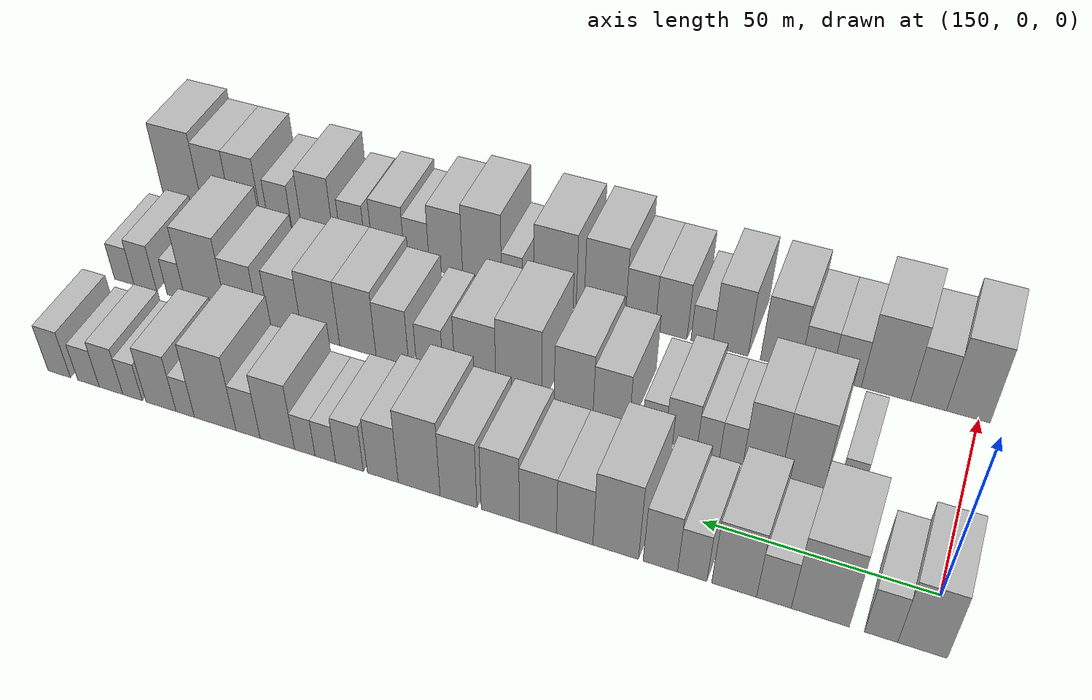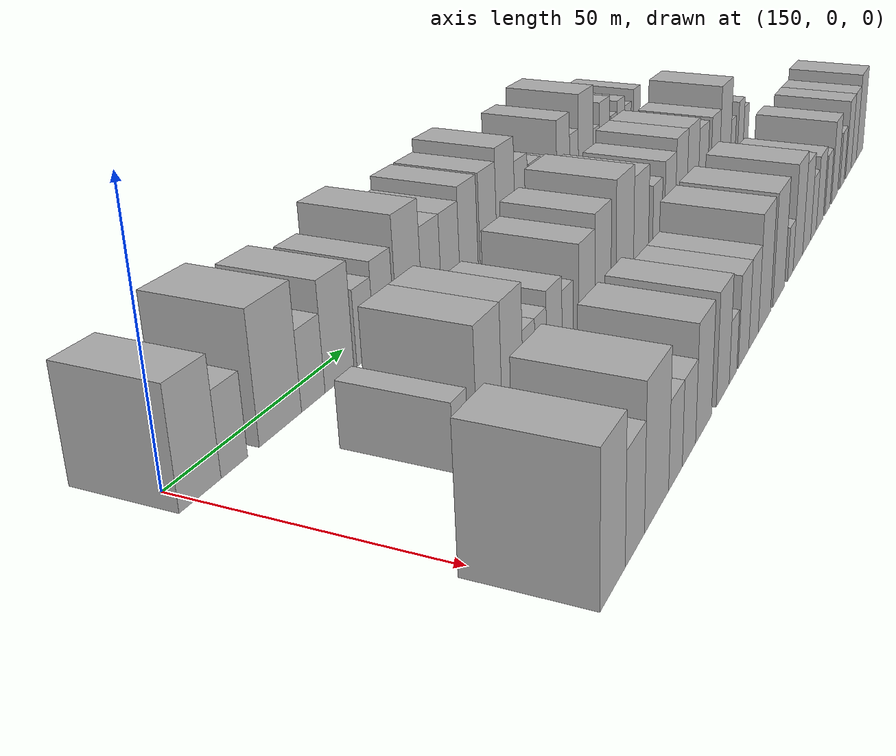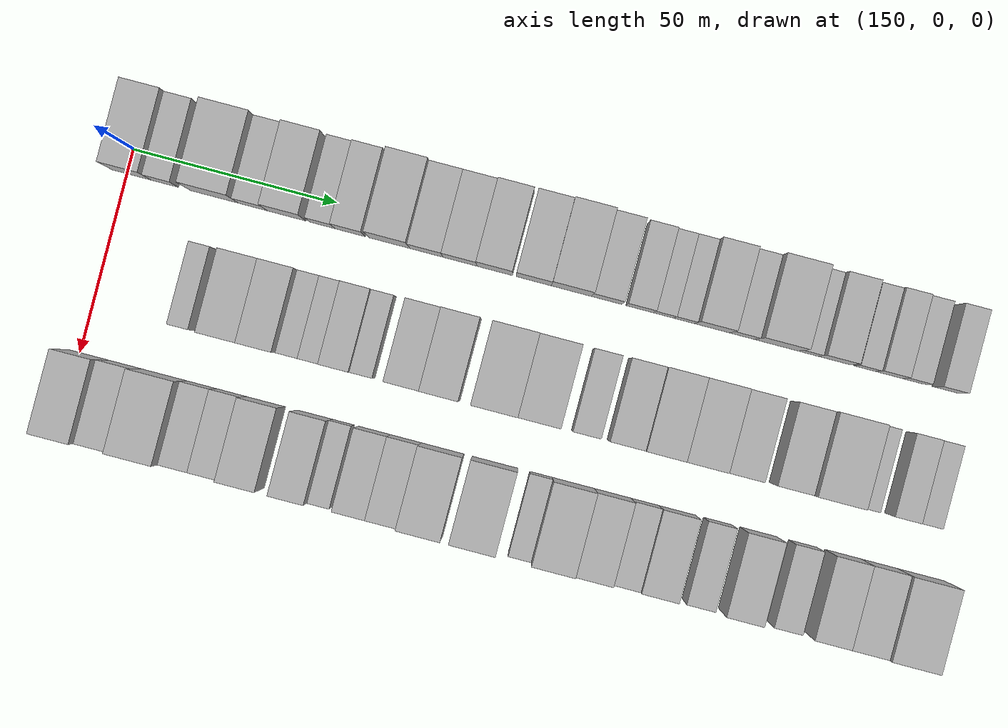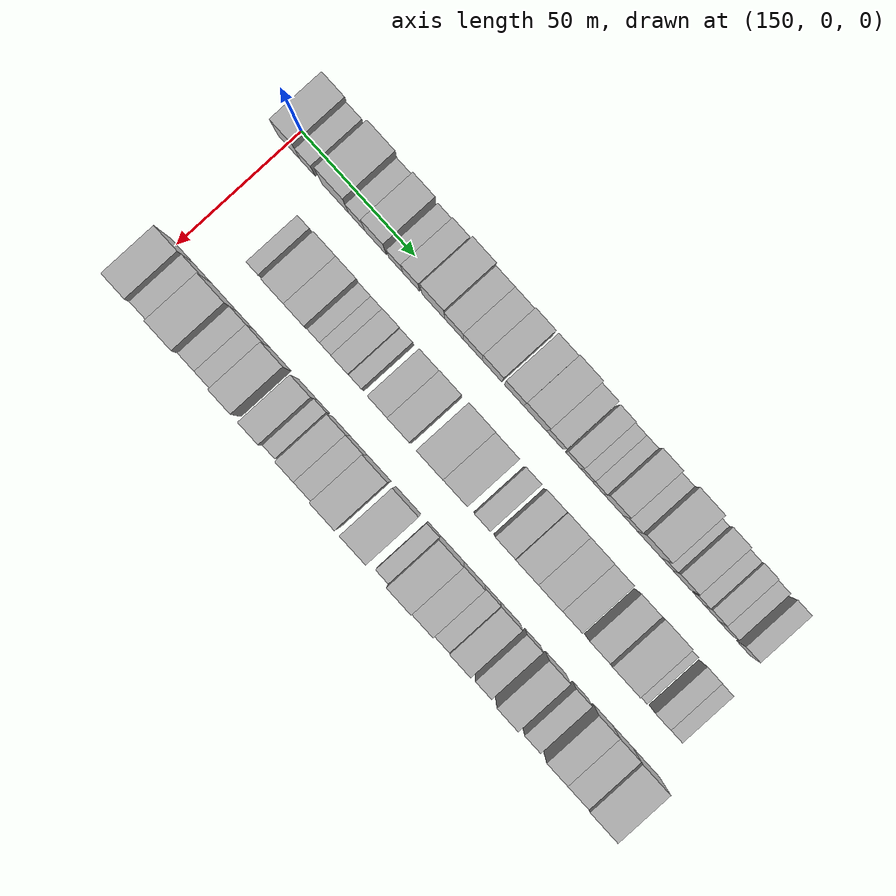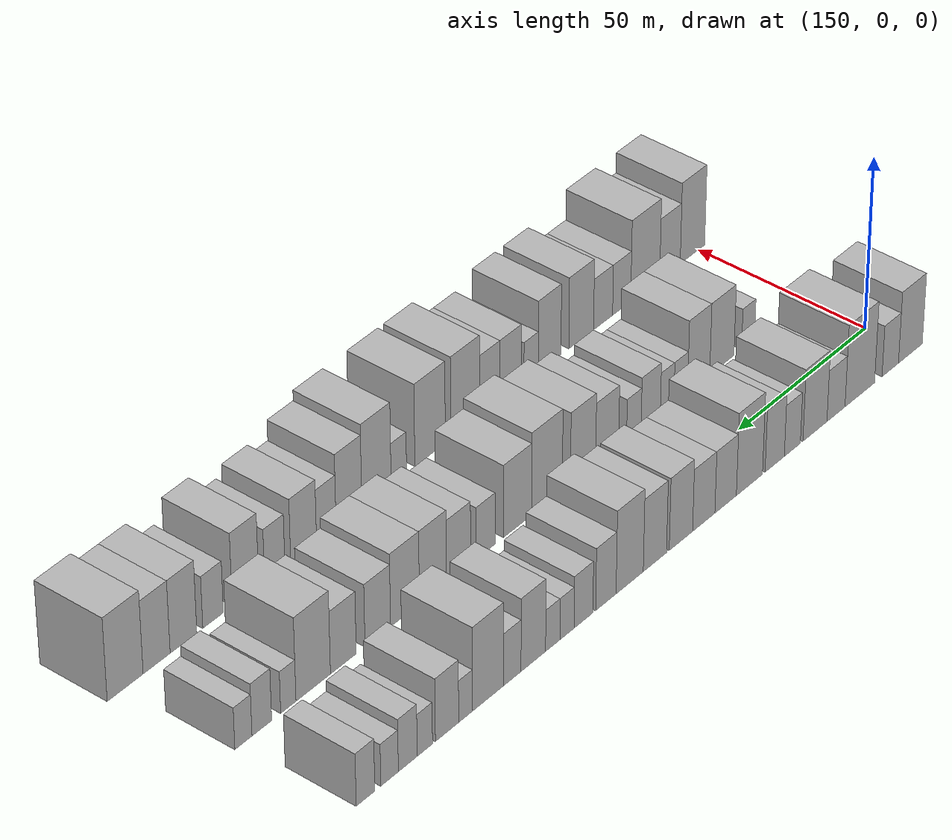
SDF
<sdf version="1.6">
 <world name="default">
  <model name="building_415">
   <static>1</static>
   <pose>146.0000 1.2237 0 0.000000 0.000000 0.000000</pose>
   <link name="link">
    <pose>0 0 10.50 0 0 0</pose>
    <collision name="collision"><geometry><box><size>20.0000 9.6899 21.0000</size></box></geometry></collision>
    <visual name="visual">
     <cast_shadows>0</cast_shadows>
     <geometry><box><size>20.0000 9.6899 21.0000</size></box></geometry>
     <material>
      <script>
       <uri>model://HANNAS_wall/materials/scripts</uri>
       <uri>model://HANNAS_wall/materials/textures</uri>
       <name>vrc/HANNAS_wall</name>
      </script>
     </material>
    </visual>
   </link>
  </model>
  <model name="building_416">
   <static>1</static>
   <pose>146.0000 9.3791 0 0.000000 0.000000 0.000000</pose>
   <link name="link">
    <pose>0 0 7.50 0 0 0</pose>
    <collision name="collision"><geometry><box><size>20.0000 6.6209 15.0000</size></box></geometry></collision>
    <visual name="visual">
     <cast_shadows>0</cast_shadows>
     <geometry><box><size>20.0000 6.6209 15.0000</size></box></geometry>
     <material>
      <script>
       <uri>model://HANNAS_wall/materials/scripts</uri>
       <uri>model://HANNAS_wall/materials/textures</uri>
       <name>vrc/HANNAS_wall</name>
      </script>
     </material>
    </visual>
   </link>
  </model>
  <model name="building_417">
   <static>1</static>
   <pose>146.0000 21.5888 0 0.000000 0.000000 0.000000</pose>
   <link name="link">
    <pose>0 0 12.00 0 0 0</pose>
    <collision name="collision"><geometry><box><size>20.0000 11.7985 24.0000</size></box></geometry></collision>
    <visual name="visual">
     <cast_shadows>0</cast_shadows>
     <geometry><box><size>20.0000 11.7985 24.0000</size></box></geometry>
     <material>
      <script>
       <uri>model://HANNAS_wall/materials/scripts</uri>
       <uri>model://HANNAS_wall/materials/textures</uri>
       <name>vrc/HANNAS_wall</name>
      </script>
     </material>
    </visual>
   </link>
  </model>
  <model name="building_418">
   <static>1</static>
   <pose>146.0000 31.0629 0 0.000000 0.000000 0.000000</pose>
   <link name="link">
    <pose>0 0 7.50 0 0 0</pose>
    <collision name="collision"><geometry><box><size>20.0000 7.1497 15.0000</size></box></geometry></collision>
    <visual name="visual">
     <cast_shadows>0</cast_shadows>
     <geometry><box><size>20.0000 7.1497 15.0000</size></box></geometry>
     <material>
      <script>
       <uri>model://HANNAS_wall/materials/scripts</uri>
       <uri>model://HANNAS_wall/materials/textures</uri>
       <name>vrc/HANNAS_wall</name>
      </script>
     </material>
    </visual>
   </link>
  </model>
  <model name="building_419">
   <static>1</static>
   <pose>146.0000 39.3427 0 0.000000 0.000000 0.000000</pose>
   <link name="link">
    <pose>0 0 10.50 0 0 0</pose>
    <collision name="collision"><geometry><box><size>20.0000 9.4098 21.0000</size></box></geometry></collision>
    <visual name="visual">
     <cast_shadows>0</cast_shadows>
     <geometry><box><size>20.0000 9.4098 21.0000</size></box></geometry>
     <material>
      <script>
       <uri>model://HANNAS_wall/materials/scripts</uri>
       <uri>model://HANNAS_wall/materials/textures</uri>
       <name>vrc/HANNAS_wall</name>
      </script>
     </material>
    </visual>
   </link>
  </model>
  <model name="building_420">
   <static>1</static>
   <pose>146.0000 48.1651 0 0.000000 0.000000 0.000000</pose>
   <link name="link">
    <pose>0 0 7.50 0 0 0</pose>
    <collision name="collision"><geometry><box><size>20.0000 6.2350 15.0000</size></box></geometry></collision>
    <visual name="visual">
     <cast_shadows>0</cast_shadows>
     <geometry><box><size>20.0000 6.2350 15.0000</size></box></geometry>
     <material>
      <script>
       <uri>model://HANNAS_wall/materials/scripts</uri>
       <uri>model://HANNAS_wall/materials/textures</uri>
       <name>vrc/HANNAS_wall</name>
      </script>
     </material>
    </visual>
   </link>
  </model>
  <model name="building_421">
   <static>1</static>
   <pose>146.0000 54.9974 0 0.000000 0.000000 0.000000</pose>
   <link name="link">
    <pose>0 0 9.00 0 0 0</pose>
    <collision name="collision"><geometry><box><size>20.0000 7.4296 18.0000</size></box></geometry></collision>
    <visual name="visual">
     <cast_shadows>0</cast_shadows>
     <geometry><box><size>20.0000 7.4296 18.0000</size></box></geometry>
     <material>
      <script>
       <uri>model://HANNAS_wall/materials/scripts</uri>
       <uri>model://HANNAS_wall/materials/textures</uri>
       <name>vrc/HANNAS_wall</name>
      </script>
     </material>
    </visual>
   </link>
  </model>
  <model name="building_422">
   <static>1</static>
   <pose>146.0000 64.7015 0 0.000000 0.000000 0.000000</pose>
   <link name="link">
    <pose>0 0 12.00 0 0 0</pose>
    <collision name="collision"><geometry><box><size>20.0000 9.9786 24.0000</size></box></geometry></collision>
    <visual name="visual">
     <cast_shadows>0</cast_shadows>
     <geometry><box><size>20.0000 9.9786 24.0000</size></box></geometry>
     <material>
      <script>
       <uri>model://HANNAS_wall/materials/scripts</uri>
       <uri>model://HANNAS_wall/materials/textures</uri>
       <name>vrc/HANNAS_wall</name>
      </script>
     </material>
    </visual>
   </link>
  </model>
  <model name="building_423">
   <static>1</static>
   <pose>146.0000 73.7558 0 0.000000 0.000000 0.000000</pose>
   <link name="link">
    <pose>0 0 9.00 0 0 0</pose>
    <collision name="collision"><geometry><box><size>20.0000 8.1301 18.0000</size></box></geometry></collision>
    <visual name="visual">
     <cast_shadows>0</cast_shadows>
     <geometry><box><size>20.0000 8.1301 18.0000</size></box></geometry>
     <material>
      <script>
       <uri>model://HANNAS_wall/materials/scripts</uri>
       <uri>model://HANNAS_wall/materials/textures</uri>
       <name>vrc/HANNAS_wall</name>
      </script>
     </material>
    </visual>
   </link>
  </model>
  <model name="building_424">
   <static>1</static>
   <pose>146.0000 82.0110 0 0.000000 0.000000 0.000000</pose>
   <link name="link">
    <pose>0 0 9.00 0 0 0</pose>
    <collision name="collision"><geometry><box><size>20.0000 8.3802 18.0000</size></box></geometry></collision>
    <visual name="visual">
     <cast_shadows>0</cast_shadows>
     <geometry><box><size>20.0000 8.3802 18.0000</size></box></geometry>
     <material>
      <script>
       <uri>model://HANNAS_wall/materials/scripts</uri>
       <uri>model://HANNAS_wall/materials/textures</uri>
       <name>vrc/HANNAS_wall</name>
      </script>
     </material>
    </visual>
   </link>
  </model>
  <model name="building_425">
   <static>1</static>
   <pose>146.0000 90.5546 0 0.000000 0.000000 0.000000</pose>
   <link name="link">
    <pose>0 0 10.50 0 0 0</pose>
    <collision name="collision"><geometry><box><size>20.0000 8.7070 21.0000</size></box></geometry></collision>
    <visual name="visual">
     <cast_shadows>0</cast_shadows>
     <geometry><box><size>20.0000 8.7070 21.0000</size></box></geometry>
     <material>
      <script>
       <uri>model://HANNAS_wall/materials/scripts</uri>
       <uri>model://HANNAS_wall/materials/textures</uri>
       <name>vrc/HANNAS_wall</name>
      </script>
     </material>
    </visual>
   </link>
  </model>
  <model name="building_426">
   <static>1</static>
   <pose>146.0000 100.1917 0 0.000000 0.000000 0.000000</pose>
   <link name="link">
    <pose>0 0 10.50 0 0 0</pose>
    <collision name="collision"><geometry><box><size>20.0000 8.5671 21.0000</size></box></geometry></collision>
    <visual name="visual">
     <cast_shadows>0</cast_shadows>
     <geometry><box><size>20.0000 8.5671 21.0000</size></box></geometry>
     <material>
      <script>
       <uri>model://HANNAS_wall/materials/scripts</uri>
       <uri>model://HANNAS_wall/materials/textures</uri>
       <name>vrc/HANNAS_wall</name>
      </script>
     </material>
    </visual>
   </link>
  </model>
  <model name="building_427">
   <static>1</static>
   <pose>146.0000 109.4375 0 0.000000 0.000000 0.000000</pose>
   <link name="link">
    <pose>0 0 12.00 0 0 0</pose>
    <collision name="collision"><geometry><box><size>20.0000 9.9245 24.0000</size></box></geometry></collision>
    <visual name="visual">
     <cast_shadows>0</cast_shadows>
     <geometry><box><size>20.0000 9.9245 24.0000</size></box></geometry>
     <material>
      <script>
       <uri>model://HANNAS_wall/materials/scripts</uri>
       <uri>model://HANNAS_wall/materials/textures</uri>
       <name>vrc/HANNAS_wall</name>
      </script>
     </material>
    </visual>
   </link>
  </model>
  <model name="building_428">
   <static>1</static>
   <pose>146.0000 118.0964 0 0.000000 0.000000 0.000000</pose>
   <link name="link">
    <pose>0 0 9.00 0 0 0</pose>
    <collision name="collision"><geometry><box><size>20.0000 7.3932 18.0000</size></box></geometry></collision>
    <visual name="visual">
     <cast_shadows>0</cast_shadows>
     <geometry><box><size>20.0000 7.3932 18.0000</size></box></geometry>
     <material>
      <script>
       <uri>model://HANNAS_wall/materials/scripts</uri>
       <uri>model://HANNAS_wall/materials/textures</uri>
       <name>vrc/HANNAS_wall</name>
      </script>
     </material>
    </visual>
   </link>
  </model>
  <model name="building_429">
   <static>1</static>
   <pose>146.0000 126.1690 0 0.000000 0.000000 0.000000</pose>
   <link name="link">
    <pose>0 0 7.50 0 0 0</pose>
    <collision name="collision"><geometry><box><size>20.0000 6.7520 15.0000</size></box></geometry></collision>
    <visual name="visual">
     <cast_shadows>0</cast_shadows>
     <geometry><box><size>20.0000 6.7520 15.0000</size></box></geometry>
     <material>
      <script>
       <uri>model://HANNAS_wall/materials/scripts</uri>
       <uri>model://HANNAS_wall/materials/textures</uri>
       <name>vrc/HANNAS_wall</name>
      </script>
     </material>
    </visual>
   </link>
  </model>
  <model name="building_430">
   <static>1</static>
   <pose>146.0000 132.0741 0 0.000000 0.000000 0.000000</pose>
   <link name="link">
    <pose>0 0 6.00 0 0 0</pose>
    <collision name="collision"><geometry><box><size>20.0000 5.0582 12.0000</size></box></geometry></collision>
    <visual name="visual">
     <cast_shadows>0</cast_shadows>
     <geometry><box><size>20.0000 5.0582 12.0000</size></box></geometry>
     <material>
      <script>
       <uri>model://HANNAS_wall/materials/scripts</uri>
       <uri>model://HANNAS_wall/materials/textures</uri>
       <name>vrc/HANNAS_wall</name>
      </script>
     </material>
    </visual>
   </link>
  </model>
  <model name="building_431">
   <static>1</static>
   <pose>146.0000 137.1391 0 0.000000 0.000000 0.000000</pose>
   <link name="link">
    <pose>0 0 6.00 0 0 0</pose>
    <collision name="collision"><geometry><box><size>20.0000 5.0719 12.0000</size></box></geometry></collision>
    <visual name="visual">
     <cast_shadows>0</cast_shadows>
     <geometry><box><size>20.0000 5.0719 12.0000</size></box></geometry>
     <material>
      <script>
       <uri>model://HANNAS_wall/materials/scripts</uri>
       <uri>model://HANNAS_wall/materials/textures</uri>
       <name>vrc/HANNAS_wall</name>
      </script>
     </material>
    </visual>
   </link>
  </model>
  <model name="building_432">
   <static>1</static>
   <pose>146.0000 144.0034 0 0.000000 0.000000 0.000000</pose>
   <link name="link">
    <pose>0 0 10.50 0 0 0</pose>
    <collision name="collision"><geometry><box><size>20.0000 8.6568 21.0000</size></box></geometry></collision>
    <visual name="visual">
     <cast_shadows>0</cast_shadows>
     <geometry><box><size>20.0000 8.6568 21.0000</size></box></geometry>
     <material>
      <script>
       <uri>model://HANNAS_wall/materials/scripts</uri>
       <uri>model://HANNAS_wall/materials/textures</uri>
       <name>vrc/HANNAS_wall</name>
      </script>
     </material>
    </visual>
   </link>
  </model>
  <model name="building_433">
   <static>1</static>
   <pose>146.0000 151.3894 0 0.000000 0.000000 0.000000</pose>
   <link name="link">
    <pose>0 0 7.50 0 0 0</pose>
    <collision name="collision"><geometry><box><size>20.0000 6.1151 15.0000</size></box></geometry></collision>
    <visual name="visual">
     <cast_shadows>0</cast_shadows>
     <geometry><box><size>20.0000 6.1151 15.0000</size></box></geometry>
     <material>
      <script>
       <uri>model://HANNAS_wall/materials/scripts</uri>
       <uri>model://HANNAS_wall/materials/textures</uri>
       <name>vrc/HANNAS_wall</name>
      </script>
     </material>
    </visual>
   </link>
  </model>
  <model name="building_434">
   <static>1</static>
   <pose>146.0000 159.7968 0 0.000000 0.000000 0.000000</pose>
   <link name="link">
    <pose>0 0 12.00 0 0 0</pose>
    <collision name="collision"><geometry><box><size>20.0000 10.6998 24.0000</size></box></geometry></collision>
    <visual name="visual">
     <cast_shadows>0</cast_shadows>
     <geometry><box><size>20.0000 10.6998 24.0000</size></box></geometry>
     <material>
      <script>
       <uri>model://HANNAS_wall/materials/scripts</uri>
       <uri>model://HANNAS_wall/materials/textures</uri>
       <name>vrc/HANNAS_wall</name>
      </script>
     </material>
    </visual>
   </link>
  </model>
  <model name="building_435">
   <static>1</static>
   <pose>146.0000 167.5469 0 0.000000 0.000000 0.000000</pose>
   <link name="link">
    <pose>0 0 6.00 0 0 0</pose>
    <collision name="collision"><geometry><box><size>20.0000 4.8004 12.0000</size></box></geometry></collision>
    <visual name="visual">
     <cast_shadows>0</cast_shadows>
     <geometry><box><size>20.0000 4.8004 12.0000</size></box></geometry>
     <material>
      <script>
       <uri>model://HANNAS_wall/materials/scripts</uri>
       <uri>model://HANNAS_wall/materials/textures</uri>
       <name>vrc/HANNAS_wall</name>
      </script>
     </material>
    </visual>
   </link>
  </model>
  <model name="building_436">
   <static>1</static>
   <pose>146.0000 173.9130 0 0.000000 0.000000 0.000000</pose>
   <link name="link">
    <pose>0 0 9.00 0 0 0</pose>
    <collision name="collision"><geometry><box><size>20.0000 7.9318 18.0000</size></box></geometry></collision>
    <visual name="visual">
     <cast_shadows>0</cast_shadows>
     <geometry><box><size>20.0000 7.9318 18.0000</size></box></geometry>
     <material>
      <script>
       <uri>model://HANNAS_wall/materials/scripts</uri>
       <uri>model://HANNAS_wall/materials/textures</uri>
       <name>vrc/HANNAS_wall</name>
      </script>
     </material>
    </visual>
   </link>
  </model>
  <model name="building_437">
   <static>1</static>
   <pose>146.0000 181.4657 0 0.000000 0.000000 0.000000</pose>
   <link name="link">
    <pose>0 0 6.00 0 0 0</pose>
    <collision name="collision"><geometry><box><size>20.0000 5.1737 12.0000</size></box></geometry></collision>
    <visual name="visual">
     <cast_shadows>0</cast_shadows>
     <geometry><box><size>20.0000 5.1737 12.0000</size></box></geometry>
     <material>
      <script>
       <uri>model://HANNAS_wall/materials/scripts</uri>
       <uri>model://HANNAS_wall/materials/textures</uri>
       <name>vrc/HANNAS_wall</name>
      </script>
     </material>
    </visual>
   </link>
  </model>
  <model name="building_438">
   <static>1</static>
   <pose>146.0000 187.2213 0 0.000000 0.000000 0.000000</pose>
   <link name="link">
    <pose>0 0 7.50 0 0 0</pose>
    <collision name="collision"><geometry><box><size>20.0000 6.3376 15.0000</size></box></geometry></collision>
    <visual name="visual">
     <cast_shadows>0</cast_shadows>
     <geometry><box><size>20.0000 6.3376 15.0000</size></box></geometry>
     <material>
      <script>
       <uri>model://HANNAS_wall/materials/scripts</uri>
       <uri>model://HANNAS_wall/materials/textures</uri>
       <name>vrc/HANNAS_wall</name>
      </script>
     </material>
    </visual>
   </link>
  </model>
  <model name="building_439">
   <static>1</static>
   <pose>146.0000 193.3290 0 0.000000 0.000000 0.000000</pose>
   <link name="link">
    <pose>0 0 6.00 0 0 0</pose>
    <collision name="collision"><geometry><box><size>20.0000 5.8777 12.0000</size></box></geometry></collision>
    <visual name="visual">
     <cast_shadows>0</cast_shadows>
     <geometry><box><size>20.0000 5.8777 12.0000</size></box></geometry>
     <material>
      <script>
       <uri>model://HANNAS_wall/materials/scripts</uri>
       <uri>model://HANNAS_wall/materials/textures</uri>
       <name>vrc/HANNAS_wall</name>
      </script>
     </material>
    </visual>
   </link>
  </model>
  <model name="building_440">
   <static>1</static>
   <pose>146.0000 201.3428 0 0.000000 0.000000 0.000000</pose>
   <link name="link">
    <pose>0 0 7.50 0 0 0</pose>
    <collision name="collision"><geometry><box><size>20.0000 6.1499 15.0000</size></box></geometry></collision>
    <visual name="visual">
     <cast_shadows>0</cast_shadows>
     <geometry><box><size>20.0000 6.1499 15.0000</size></box></geometry>
     <material>
      <script>
       <uri>model://HANNAS_wall/materials/scripts</uri>
       <uri>model://HANNAS_wall/materials/textures</uri>
       <name>vrc/HANNAS_wall</name>
      </script>
     </material>
    </visual>
   </link>
  </model>
  <model name="building_535">
   <static>1</static>
   <pose>178.0000 22.5498 0 0.000000 0.000000 0.000000</pose>
   <link name="link">
    <pose>0 0 6.00 0 0 0</pose>
    <collision name="collision"><geometry><box><size>20.0000 5.1262 12.0000</size></box></geometry></collision>
    <visual name="visual">
     <cast_shadows>0</cast_shadows>
     <geometry><box><size>20.0000 5.1262 12.0000</size></box></geometry>
     <material>
      <script>
       <uri>model://HANNAS_wall/materials/scripts</uri>
       <uri>model://HANNAS_wall/materials/textures</uri>
       <name>vrc/HANNAS_wall</name>
      </script>
     </material>
    </visual>
   </link>
  </model>
  <model name="building_536">
   <static>1</static>
   <pose>178.0000 32.8530 0 0.000000 0.000000 0.000000</pose>
   <link name="link">
    <pose>0 0 10.50 0 0 0</pose>
    <collision name="collision"><geometry><box><size>20.0000 9.4803 21.0000</size></box></geometry></collision>
    <visual name="visual">
     <cast_shadows>0</cast_shadows>
     <geometry><box><size>20.0000 9.4803 21.0000</size></box></geometry>
     <material>
      <script>
       <uri>model://HANNAS_wall/materials/scripts</uri>
       <uri>model://HANNAS_wall/materials/textures</uri>
       <name>vrc/HANNAS_wall</name>
      </script>
     </material>
    </visual>
   </link>
  </model>
  <model name="building_537">
   <static>1</static>
   <pose>178.0000 41.8807 0 0.000000 0.000000 0.000000</pose>
   <link name="link">
    <pose>0 0 10.50 0 0 0</pose>
    <collision name="collision"><geometry><box><size>20.0000 8.5750 21.0000</size></box></geometry></collision>
    <visual name="visual">
     <cast_shadows>0</cast_shadows>
     <geometry><box><size>20.0000 8.5750 21.0000</size></box></geometry>
     <material>
      <script>
       <uri>model://HANNAS_wall/materials/scripts</uri>
       <uri>model://HANNAS_wall/materials/textures</uri>
       <name>vrc/HANNAS_wall</name>
      </script>
     </material>
    </visual>
   </link>
  </model>
  <model name="building_538">
   <static>1</static>
   <pose>178.0000 48.8132 0 0.000000 0.000000 0.000000</pose>
   <link name="link">
    <pose>0 0 6.00 0 0 0</pose>
    <collision name="collision"><geometry><box><size>20.0000 5.2901 12.0000</size></box></geometry></collision>
    <visual name="visual">
     <cast_shadows>0</cast_shadows>
     <geometry><box><size>20.0000 5.2901 12.0000</size></box></geometry>
     <material>
      <script>
       <uri>model://HANNAS_wall/materials/scripts</uri>
       <uri>model://HANNAS_wall/materials/textures</uri>
       <name>vrc/HANNAS_wall</name>
      </script>
     </material>
    </visual>
   </link>
  </model>
  <model name="building_539">
   <static>1</static>
   <pose>178.0000 54.0547 0 0.000000 0.000000 0.000000</pose>
   <link name="link">
    <pose>0 0 6.00 0 0 0</pose>
    <collision name="collision"><geometry><box><size>20.0000 5.1930 12.0000</size></box></geometry></collision>
    <visual name="visual">
     <cast_shadows>0</cast_shadows>
     <geometry><box><size>20.0000 5.1930 12.0000</size></box></geometry>
     <material>
      <script>
       <uri>model://HANNAS_wall/materials/scripts</uri>
       <uri>model://HANNAS_wall/materials/textures</uri>
       <name>vrc/HANNAS_wall</name>
      </script>
     </material>
    </visual>
   </link>
  </model>
  <model name="building_540">
   <static>1</static>
   <pose>178.0000 60.3125 0 0.000000 0.000000 0.000000</pose>
   <link name="link">
    <pose>0 0 7.50 0 0 0</pose>
    <collision name="collision"><geometry><box><size>20.0000 7.3225 15.0000</size></box></geometry></collision>
    <visual name="visual">
     <cast_shadows>0</cast_shadows>
     <geometry><box><size>20.0000 7.3225 15.0000</size></box></geometry>
     <material>
      <script>
       <uri>model://HANNAS_wall/materials/scripts</uri>
       <uri>model://HANNAS_wall/materials/textures</uri>
       <name>vrc/HANNAS_wall</name>
      </script>
     </material>
    </visual>
   </link>
  </model>
  <model name="building_541">
   <static>1</static>
   <pose>178.0000 66.7202 0 0.000000 0.000000 0.000000</pose>
   <link name="link">
    <pose>0 0 6.00 0 0 0</pose>
    <collision name="collision"><geometry><box><size>20.0000 5.4929 12.0000</size></box></geometry></collision>
    <visual name="visual">
     <cast_shadows>0</cast_shadows>
     <geometry><box><size>20.0000 5.4929 12.0000</size></box></geometry>
     <material>
      <script>
       <uri>model://HANNAS_wall/materials/scripts</uri>
       <uri>model://HANNAS_wall/materials/textures</uri>
       <name>vrc/HANNAS_wall</name>
      </script>
     </material>
    </visual>
   </link>
  </model>
  <model name="building_542">
   <static>1</static>
   <pose>178.0000 76.7749 0 0.000000 0.000000 0.000000</pose>
   <link name="link">
    <pose>0 0 9.00 0 0 0</pose>
    <collision name="collision"><geometry><box><size>20.0000 8.6165 18.0000</size></box></geometry></collision>
    <visual name="visual">
     <cast_shadows>0</cast_shadows>
     <geometry><box><size>20.0000 8.6165 18.0000</size></box></geometry>
     <material>
      <script>
       <uri>model://HANNAS_wall/materials/scripts</uri>
       <uri>model://HANNAS_wall/materials/textures</uri>
       <name>vrc/HANNAS_wall</name>
      </script>
     </material>
    </visual>
   </link>
  </model>
  <model name="building_543">
   <static>1</static>
   <pose>178.0000 85.7597 0 0.000000 0.000000 0.000000</pose>
   <link name="link">
    <pose>0 0 10.50 0 0 0</pose>
    <collision name="collision"><geometry><box><size>20.0000 9.3530 21.0000</size></box></geometry></collision>
    <visual name="visual">
     <cast_shadows>0</cast_shadows>
     <geometry><box><size>20.0000 9.3530 21.0000</size></box></geometry>
     <material>
      <script>
       <uri>model://HANNAS_wall/materials/scripts</uri>
       <uri>model://HANNAS_wall/materials/textures</uri>
       <name>vrc/HANNAS_wall</name>
      </script>
     </material>
    </visual>
   </link>
  </model>
  <model name="building_544">
   <static>1</static>
   <pose>178.0000 99.0305 0 0.000000 0.000000 0.000000</pose>
   <link name="link">
    <pose>0 0 12.00 0 0 0</pose>
    <collision name="collision"><geometry><box><size>20.0000 11.1885 24.0000</size></box></geometry></collision>
    <visual name="visual">
     <cast_shadows>0</cast_shadows>
     <geometry><box><size>20.0000 11.1885 24.0000</size></box></geometry>
     <material>
      <script>
       <uri>model://HANNAS_wall/materials/scripts</uri>
       <uri>model://HANNAS_wall/materials/textures</uri>
       <name>vrc/HANNAS_wall</name>
      </script>
     </material>
    </visual>
   </link>
  </model>
  <model name="building_545">
   <static>1</static>
   <pose>178.0000 109.7427 0 0.000000 0.000000 0.000000</pose>
   <link name="link">
    <pose>0 0 10.50 0 0 0</pose>
    <collision name="collision"><geometry><box><size>20.0000 10.2359 21.0000</size></box></geometry></collision>
    <visual name="visual">
     <cast_shadows>0</cast_shadows>
     <geometry><box><size>20.0000 10.2359 21.0000</size></box></geometry>
     <material>
      <script>
       <uri>model://HANNAS_wall/materials/scripts</uri>
       <uri>model://HANNAS_wall/materials/textures</uri>
       <name>vrc/HANNAS_wall</name>
      </script>
     </material>
    </visual>
   </link>
  </model>
  <model name="building_546">
   <static>1</static>
   <pose>178.0000 121.2513 0 0.000000 0.000000 0.000000</pose>
   <link name="link">
    <pose>0 0 7.50 0 0 0</pose>
    <collision name="collision"><geometry><box><size>20.0000 6.7814 15.0000</size></box></geometry></collision>
    <visual name="visual">
     <cast_shadows>0</cast_shadows>
     <geometry><box><size>20.0000 6.7814 15.0000</size></box></geometry>
     <material>
      <script>
       <uri>model://HANNAS_wall/materials/scripts</uri>
       <uri>model://HANNAS_wall/materials/textures</uri>
       <name>vrc/HANNAS_wall</name>
      </script>
     </material>
    </visual>
   </link>
  </model>
  <model name="building_547">
   <static>1</static>
   <pose>178.0000 130.8979 0 0.000000 0.000000 0.000000</pose>
   <link name="link">
    <pose>0 0 9.00 0 0 0</pose>
    <collision name="collision"><geometry><box><size>20.0000 8.5118 18.0000</size></box></geometry></collision>
    <visual name="visual">
     <cast_shadows>0</cast_shadows>
     <geometry><box><size>20.0000 8.5118 18.0000</size></box></geometry>
     <material>
      <script>
       <uri>model://HANNAS_wall/materials/scripts</uri>
       <uri>model://HANNAS_wall/materials/textures</uri>
       <name>vrc/HANNAS_wall</name>
      </script>
     </material>
    </visual>
   </link>
  </model>
  <model name="building_548">
   <static>1</static>
   <pose>178.0000 139.9261 0 0.000000 0.000000 0.000000</pose>
   <link name="link">
    <pose>0 0 10.50 0 0 0</pose>
    <collision name="collision"><geometry><box><size>20.0000 9.5446 21.0000</size></box></geometry></collision>
    <visual name="visual">
     <cast_shadows>0</cast_shadows>
     <geometry><box><size>20.0000 9.5446 21.0000</size></box></geometry>
     <material>
      <script>
       <uri>model://HANNAS_wall/materials/scripts</uri>
       <uri>model://HANNAS_wall/materials/textures</uri>
       <name>vrc/HANNAS_wall</name>
      </script>
     </material>
    </visual>
   </link>
  </model>
  <model name="building_549">
   <static>1</static>
   <pose>178.0000 149.7157 0 0.000000 0.000000 0.000000</pose>
   <link name="link">
    <pose>0 0 10.50 0 0 0</pose>
    <collision name="collision"><geometry><box><size>20.0000 10.0346 21.0000</size></box></geometry></collision>
    <visual name="visual">
     <cast_shadows>0</cast_shadows>
     <geometry><box><size>20.0000 10.0346 21.0000</size></box></geometry>
     <material>
      <script>
       <uri>model://HANNAS_wall/materials/scripts</uri>
       <uri>model://HANNAS_wall/materials/textures</uri>
       <name>vrc/HANNAS_wall</name>
      </script>
     </material>
    </visual>
   </link>
  </model>
  <model name="building_550">
   <static>1</static>
   <pose>178.0000 159.1355 0 0.000000 0.000000 0.000000</pose>
   <link name="link">
    <pose>0 0 9.00 0 0 0</pose>
    <collision name="collision"><geometry><box><size>20.0000 8.8051 18.0000</size></box></geometry></collision>
    <visual name="visual">
     <cast_shadows>0</cast_shadows>
     <geometry><box><size>20.0000 8.8051 18.0000</size></box></geometry>
     <material>
      <script>
       <uri>model://HANNAS_wall/materials/scripts</uri>
       <uri>model://HANNAS_wall/materials/textures</uri>
       <name>vrc/HANNAS_wall</name>
      </script>
     </material>
    </visual>
   </link>
  </model>
  <model name="building_551">
   <static>1</static>
   <pose>178.0000 170.9232 0 0.000000 0.000000 0.000000</pose>
   <link name="link">
    <pose>0 0 9.00 0 0 0</pose>
    <collision name="collision"><geometry><box><size>20.0000 8.7704 18.0000</size></box></geometry></collision>
    <visual name="visual">
     <cast_shadows>0</cast_shadows>
     <geometry><box><size>20.0000 8.7704 18.0000</size></box></geometry>
     <material>
      <script>
       <uri>model://HANNAS_wall/materials/scripts</uri>
       <uri>model://HANNAS_wall/materials/textures</uri>
       <name>vrc/HANNAS_wall</name>
      </script>
     </material>
    </visual>
   </link>
  </model>
  <model name="building_552">
   <static>1</static>
   <pose>178.0000 181.1104 0 0.000000 0.000000 0.000000</pose>
   <link name="link">
    <pose>0 0 12.00 0 0 0</pose>
    <collision name="collision"><geometry><box><size>20.0000 11.6040 24.0000</size></box></geometry></collision>
    <visual name="visual">
     <cast_shadows>0</cast_shadows>
     <geometry><box><size>20.0000 11.6040 24.0000</size></box></geometry>
     <material>
      <script>
       <uri>model://HANNAS_wall/materials/scripts</uri>
       <uri>model://HANNAS_wall/materials/textures</uri>
       <name>vrc/HANNAS_wall</name>
      </script>
     </material>
    </visual>
   </link>
  </model>
  <model name="building_553">
   <static>1</static>
   <pose>178.0000 189.4653 0 0.000000 0.000000 0.000000</pose>
   <link name="link">
    <pose>0 0 6.00 0 0 0</pose>
    <collision name="collision"><geometry><box><size>20.0000 5.1057 12.0000</size></box></geometry></collision>
    <visual name="visual">
     <cast_shadows>0</cast_shadows>
     <geometry><box><size>20.0000 5.1057 12.0000</size></box></geometry>
     <material>
      <script>
       <uri>model://HANNAS_wall/materials/scripts</uri>
       <uri>model://HANNAS_wall/materials/textures</uri>
       <name>vrc/HANNAS_wall</name>
      </script>
     </material>
    </visual>
   </link>
  </model>
  <model name="building_554">
   <static>1</static>
   <pose>178.0000 198.2634 0 0.000000 0.000000 0.000000</pose>
   <link name="link">
    <pose>0 0 7.50 0 0 0</pose>
    <collision name="collision"><geometry><box><size>20.0000 6.4904 15.0000</size></box></geometry></collision>
    <visual name="visual">
     <cast_shadows>0</cast_shadows>
     <geometry><box><size>20.0000 6.4904 15.0000</size></box></geometry>
     <material>
      <script>
       <uri>model://HANNAS_wall/materials/scripts</uri>
       <uri>model://HANNAS_wall/materials/textures</uri>
       <name>vrc/HANNAS_wall</name>
      </script>
     </material>
    </visual>
   </link>
  </model>
  <model name="building_555">
   <static>1</static>
   <pose>178.0000 204.3243 0 0.000000 0.000000 0.000000</pose>
   <link name="link">
    <pose>0 0 6.00 0 0 0</pose>
    <collision name="collision"><geometry><box><size>20.0000 5.6315 12.0000</size></box></geometry></collision>
    <visual name="visual">
     <cast_shadows>0</cast_shadows>
     <geometry><box><size>20.0000 5.6315 12.0000</size></box></geometry>
     <material>
      <script>
       <uri>model://HANNAS_wall/materials/scripts</uri>
       <uri>model://HANNAS_wall/materials/textures</uri>
       <name>vrc/HANNAS_wall</name>
      </script>
     </material>
    </visual>
   </link>
  </model>
  <model name="building_650">
   <static>1</static>
   <pose>210.0000 2.3407 0 0.000000 0.000000 0.000000</pose>
   <link name="link">
    <pose>0 0 12.00 0 0 0</pose>
    <collision name="collision"><geometry><box><size>20.0000 9.7606 24.0000</size></box></geometry></collision>
    <visual name="visual">
     <cast_shadows>0</cast_shadows>
     <geometry><box><size>20.0000 9.7606 24.0000</size></box></geometry>
     <material>
      <script>
       <uri>model://HANNAS_wall/materials/scripts</uri>
       <uri>model://HANNAS_wall/materials/textures</uri>
       <name>vrc/HANNAS_wall</name>
      </script>
     </material>
    </visual>
   </link>
  </model>
  <model name="building_651">
   <static>1</static>
   <pose>210.0000 11.2899 0 0.000000 0.000000 0.000000</pose>
   <link name="link">
    <pose>0 0 9.00 0 0 0</pose>
    <collision name="collision"><geometry><box><size>20.0000 8.1377 18.0000</size></box></geometry></collision>
    <visual name="visual">
     <cast_shadows>0</cast_shadows>
     <geometry><box><size>20.0000 8.1377 18.0000</size></box></geometry>
     <material>
      <script>
       <uri>model://HANNAS_wall/materials/scripts</uri>
       <uri>model://HANNAS_wall/materials/textures</uri>
       <name>vrc/HANNAS_wall</name>
      </script>
     </material>
    </visual>
   </link>
  </model>
  <model name="building_652">
   <static>1</static>
   <pose>210.0000 21.0483 0 0.000000 0.000000 0.000000</pose>
   <link name="link">
    <pose>0 0 12.00 0 0 0</pose>
    <collision name="collision"><geometry><box><size>20.0000 11.3790 24.0000</size></box></geometry></collision>
    <visual name="visual">
     <cast_shadows>0</cast_shadows>
     <geometry><box><size>20.0000 11.3790 24.0000</size></box></geometry>
     <material>
      <script>
       <uri>model://HANNAS_wall/materials/scripts</uri>
       <uri>model://HANNAS_wall/materials/textures</uri>
       <name>vrc/HANNAS_wall</name>
      </script>
     </material>
    </visual>
   </link>
  </model>
  <model name="building_653">
   <static>1</static>
   <pose>210.0000 30.2663 0 0.000000 0.000000 0.000000</pose>
   <link name="link">
    <pose>0 0 7.50 0 0 0</pose>
    <collision name="collision"><geometry><box><size>20.0000 7.0569 15.0000</size></box></geometry></collision>
    <visual name="visual">
     <cast_shadows>0</cast_shadows>
     <geometry><box><size>20.0000 7.0569 15.0000</size></box></geometry>
     <material>
      <script>
       <uri>model://HANNAS_wall/materials/scripts</uri>
       <uri>model://HANNAS_wall/materials/textures</uri>
       <name>vrc/HANNAS_wall</name>
      </script>
     </material>
    </visual>
   </link>
  </model>
  <model name="building_654">
   <static>1</static>
   <pose>210.0000 37.4700 0 0.000000 0.000000 0.000000</pose>
   <link name="link">
    <pose>0 0 7.50 0 0 0</pose>
    <collision name="collision"><geometry><box><size>20.0000 7.3506 15.0000</size></box></geometry></collision>
    <visual name="visual">
     <cast_shadows>0</cast_shadows>
     <geometry><box><size>20.0000 7.3506 15.0000</size></box></geometry>
     <material>
      <script>
       <uri>model://HANNAS_wall/materials/scripts</uri>
       <uri>model://HANNAS_wall/materials/textures</uri>
       <name>vrc/HANNAS_wall</name>
      </script>
     </material>
    </visual>
   </link>
  </model>
  <model name="building_655">
   <static>1</static>
   <pose>210.0000 45.8940 0 0.000000 0.000000 0.000000</pose>
   <link name="link">
    <pose>0 0 10.50 0 0 0</pose>
    <collision name="collision"><geometry><box><size>20.0000 9.4973 21.0000</size></box></geometry></collision>
    <visual name="visual">
     <cast_shadows>0</cast_shadows>
     <geometry><box><size>20.0000 9.4973 21.0000</size></box></geometry>
     <material>
      <script>
       <uri>model://HANNAS_wall/materials/scripts</uri>
       <uri>model://HANNAS_wall/materials/textures</uri>
       <name>vrc/HANNAS_wall</name>
      </script>
     </material>
    </visual>
   </link>
  </model>
  <model name="building_656">
   <static>1</static>
   <pose>210.0000 57.9511 0 0.000000 0.000000 0.000000</pose>
   <link name="link">
    <pose>0 0 10.50 0 0 0</pose>
    <collision name="collision"><geometry><box><size>20.0000 8.6170 21.0000</size></box></geometry></collision>
    <visual name="visual">
     <cast_shadows>0</cast_shadows>
     <geometry><box><size>20.0000 8.6170 21.0000</size></box></geometry>
     <material>
      <script>
       <uri>model://HANNAS_wall/materials/scripts</uri>
       <uri>model://HANNAS_wall/materials/textures</uri>
       <name>vrc/HANNAS_wall</name>
      </script>
     </material>
    </visual>
   </link>
  </model>
  <model name="building_657">
   <static>1</static>
   <pose>210.0000 64.9376 0 0.000000 0.000000 0.000000</pose>
   <link name="link">
    <pose>0 0 6.00 0 0 0</pose>
    <collision name="collision"><geometry><box><size>20.0000 5.3559 12.0000</size></box></geometry></collision>
    <visual name="visual">
     <cast_shadows>0</cast_shadows>
     <geometry><box><size>20.0000 5.3559 12.0000</size></box></geometry>
     <material>
      <script>
       <uri>model://HANNAS_wall/materials/scripts</uri>
       <uri>model://HANNAS_wall/materials/textures</uri>
       <name>vrc/HANNAS_wall</name>
      </script>
     </material>
    </visual>
   </link>
  </model>
  <model name="building_658">
   <static>1</static>
   <pose>210.0000 72.5832 0 0.000000 0.000000 0.000000</pose>
   <link name="link">
    <pose>0 0 9.00 0 0 0</pose>
    <collision name="collision"><geometry><box><size>20.0000 7.9353 18.0000</size></box></geometry></collision>
    <visual name="visual">
     <cast_shadows>0</cast_shadows>
     <geometry><box><size>20.0000 7.9353 18.0000</size></box></geometry>
     <material>
      <script>
       <uri>model://HANNAS_wall/materials/scripts</uri>
       <uri>model://HANNAS_wall/materials/textures</uri>
       <name>vrc/HANNAS_wall</name>
      </script>
     </material>
    </visual>
   </link>
  </model>
  <model name="building_659">
   <static>1</static>
   <pose>210.0000 80.3401 0 0.000000 0.000000 0.000000</pose>
   <link name="link">
    <pose>0 0 9.00 0 0 0</pose>
    <collision name="collision"><geometry><box><size>20.0000 7.5785 18.0000</size></box></geometry></collision>
    <visual name="visual">
     <cast_shadows>0</cast_shadows>
     <geometry><box><size>20.0000 7.5785 18.0000</size></box></geometry>
     <material>
      <script>
       <uri>model://HANNAS_wall/materials/scripts</uri>
       <uri>model://HANNAS_wall/materials/textures</uri>
       <name>vrc/HANNAS_wall</name>
      </script>
     </material>
    </visual>
   </link>
  </model>
  <model name="building_660">
   <static>1</static>
   <pose>210.0000 89.4110 0 0.000000 0.000000 0.000000</pose>
   <link name="link">
    <pose>0 0 12.00 0 0 0</pose>
    <collision name="collision"><geometry><box><size>20.0000 10.5634 24.0000</size></box></geometry></collision>
    <visual name="visual">
     <cast_shadows>0</cast_shadows>
     <geometry><box><size>20.0000 10.5634 24.0000</size></box></geometry>
     <material>
      <script>
       <uri>model://HANNAS_wall/materials/scripts</uri>
       <uri>model://HANNAS_wall/materials/textures</uri>
       <name>vrc/HANNAS_wall</name>
      </script>
     </material>
    </visual>
   </link>
  </model>
  <model name="building_661">
   <static>1</static>
   <pose>210.0000 102.2222 0 0.000000 0.000000 0.000000</pose>
   <link name="link">
    <pose>0 0 12.00 0 0 0</pose>
    <collision name="collision"><geometry><box><size>20.0000 11.0589 24.0000</size></box></geometry></collision>
    <visual name="visual">
     <cast_shadows>0</cast_shadows>
     <geometry><box><size>20.0000 11.0589 24.0000</size></box></geometry>
     <material>
      <script>
       <uri>model://HANNAS_wall/materials/scripts</uri>
       <uri>model://HANNAS_wall/materials/textures</uri>
       <name>vrc/HANNAS_wall</name>
      </script>
     </material>
    </visual>
   </link>
  </model>
  <model name="building_662">
   <static>1</static>
   <pose>210.0000 113.5164 0 0.000000 0.000000 0.000000</pose>
   <link name="link">
    <pose>0 0 6.00 0 0 0</pose>
    <collision name="collision"><geometry><box><size>20.0000 5.5294 12.0000</size></box></geometry></collision>
    <visual name="visual">
     <cast_shadows>0</cast_shadows>
     <geometry><box><size>20.0000 5.5294 12.0000</size></box></geometry>
     <material>
      <script>
       <uri>model://HANNAS_wall/materials/scripts</uri>
       <uri>model://HANNAS_wall/materials/textures</uri>
       <name>vrc/HANNAS_wall</name>
      </script>
     </material>
    </visual>
   </link>
  </model>
  <model name="building_663">
   <static>1</static>
   <pose>210.0000 121.4840 0 0.000000 0.000000 0.000000</pose>
   <link name="link">
    <pose>0 0 12.00 0 0 0</pose>
    <collision name="collision"><geometry><box><size>20.0000 10.4060 24.0000</size></box></geometry></collision>
    <visual name="visual">
     <cast_shadows>0</cast_shadows>
     <geometry><box><size>20.0000 10.4060 24.0000</size></box></geometry>
     <material>
      <script>
       <uri>model://HANNAS_wall/materials/scripts</uri>
       <uri>model://HANNAS_wall/materials/textures</uri>
       <name>vrc/HANNAS_wall</name>
      </script>
     </material>
    </visual>
   </link>
  </model>
  <model name="building_664">
   <static>1</static>
   <pose>210.0000 131.2310 0 0.000000 0.000000 0.000000</pose>
   <link name="link">
    <pose>0 0 10.50 0 0 0</pose>
    <collision name="collision"><geometry><box><size>20.0000 9.0879 21.0000</size></box></geometry></collision>
    <visual name="visual">
     <cast_shadows>0</cast_shadows>
     <geometry><box><size>20.0000 9.0879 21.0000</size></box></geometry>
     <material>
      <script>
       <uri>model://HANNAS_wall/materials/scripts</uri>
       <uri>model://HANNAS_wall/materials/textures</uri>
       <name>vrc/HANNAS_wall</name>
      </script>
     </material>
    </visual>
   </link>
  </model>
  <model name="building_665">
   <static>1</static>
   <pose>210.0000 139.1829 0 0.000000 0.000000 0.000000</pose>
   <link name="link">
    <pose>0 0 7.50 0 0 0</pose>
    <collision name="collision"><geometry><box><size>20.0000 6.8160 15.0000</size></box></geometry></collision>
    <visual name="visual">
     <cast_shadows>0</cast_shadows>
     <geometry><box><size>20.0000 6.8160 15.0000</size></box></geometry>
     <material>
      <script>
       <uri>model://HANNAS_wall/materials/scripts</uri>
       <uri>model://HANNAS_wall/materials/textures</uri>
       <name>vrc/HANNAS_wall</name>
      </script>
     </material>
    </visual>
   </link>
  </model>
  <model name="building_666">
   <static>1</static>
   <pose>210.0000 147.0688 0 0.000000 0.000000 0.000000</pose>
   <link name="link">
    <pose>0 0 9.00 0 0 0</pose>
    <collision name="collision"><geometry><box><size>20.0000 8.9557 18.0000</size></box></geometry></collision>
    <visual name="visual">
     <cast_shadows>0</cast_shadows>
     <geometry><box><size>20.0000 8.9557 18.0000</size></box></geometry>
     <material>
      <script>
       <uri>model://HANNAS_wall/materials/scripts</uri>
       <uri>model://HANNAS_wall/materials/textures</uri>
       <name>vrc/HANNAS_wall</name>
      </script>
     </material>
    </visual>
   </link>
  </model>
  <model name="building_667">
   <static>1</static>
   <pose>210.0000 157.0214 0 0.000000 0.000000 0.000000</pose>
   <link name="link">
    <pose>0 0 7.50 0 0 0</pose>
    <collision name="collision"><geometry><box><size>20.0000 6.9495 15.0000</size></box></geometry></collision>
    <visual name="visual">
     <cast_shadows>0</cast_shadows>
     <geometry><box><size>20.0000 6.9495 15.0000</size></box></geometry>
     <material>
      <script>
       <uri>model://HANNAS_wall/materials/scripts</uri>
       <uri>model://HANNAS_wall/materials/textures</uri>
       <name>vrc/HANNAS_wall</name>
      </script>
     </material>
    </visual>
   </link>
  </model>
  <model name="building_668">
   <static>1</static>
   <pose>210.0000 167.0008 0 0.000000 0.000000 0.000000</pose>
   <link name="link">
    <pose>0 0 10.50 0 0 0</pose>
    <collision name="collision"><geometry><box><size>20.0000 9.0093 21.0000</size></box></geometry></collision>
    <visual name="visual">
     <cast_shadows>0</cast_shadows>
     <geometry><box><size>20.0000 9.0093 21.0000</size></box></geometry>
     <material>
      <script>
       <uri>model://HANNAS_wall/materials/scripts</uri>
       <uri>model://HANNAS_wall/materials/textures</uri>
       <name>vrc/HANNAS_wall</name>
      </script>
     </material>
    </visual>
   </link>
  </model>
  <model name="building_669">
   <static>1</static>
   <pose>210.0000 177.9538 0 0.000000 0.000000 0.000000</pose>
   <link name="link">
    <pose>0 0 7.50 0 0 0</pose>
    <collision name="collision"><geometry><box><size>20.0000 6.8967 15.0000</size></box></geometry></collision>
    <visual name="visual">
     <cast_shadows>0</cast_shadows>
     <geometry><box><size>20.0000 6.8967 15.0000</size></box></geometry>
     <material>
      <script>
       <uri>model://HANNAS_wall/materials/scripts</uri>
       <uri>model://HANNAS_wall/materials/textures</uri>
       <name>vrc/HANNAS_wall</name>
      </script>
     </material>
    </visual>
   </link>
  </model>
  <model name="building_670">
   <static>1</static>
   <pose>210.0000 187.8345 0 0.000000 0.000000 0.000000</pose>
   <link name="link">
    <pose>0 0 10.50 0 0 0</pose>
    <collision name="collision"><geometry><box><size>20.0000 8.8649 21.0000</size></box></geometry></collision>
    <visual name="visual">
     <cast_shadows>0</cast_shadows>
     <geometry><box><size>20.0000 8.8649 21.0000</size></box></geometry>
     <material>
      <script>
       <uri>model://HANNAS_wall/materials/scripts</uri>
       <uri>model://HANNAS_wall/materials/textures</uri>
       <name>vrc/HANNAS_wall</name>
      </script>
     </material>
    </visual>
   </link>
  </model>
  <model name="building_671">
   <static>1</static>
   <pose>210.0000 196.7168 0 0.000000 0.000000 0.000000</pose>
   <link name="link">
    <pose>0 0 10.50 0 0 0</pose>
    <collision name="collision"><geometry><box><size>20.0000 8.8997 21.0000</size></box></geometry></collision>
    <visual name="visual">
     <cast_shadows>0</cast_shadows>
     <geometry><box><size>20.0000 8.8997 21.0000</size></box></geometry>
     <material>
      <script>
       <uri>model://HANNAS_wall/materials/scripts</uri>
       <uri>model://HANNAS_wall/materials/textures</uri>
       <name>vrc/HANNAS_wall</name>
      </script>
     </material>
    </visual>
   </link>
  </model>
  <model name="building_672">
   <static>1</static>
   <pose>210.0000 207.0211 0 0.000000 0.000000 0.000000</pose>
   <link name="link">
    <pose>0 0 12.00 0 0 0</pose>
    <collision name="collision"><geometry><box><size>20.0000 11.7089 24.0000</size></box></geometry></collision>
    <visual name="visual">
     <cast_shadows>0</cast_shadows>
     <geometry><box><size>20.0000 11.7089 24.0000</size></box></geometry>
     <material>
      <script>
       <uri>model://HANNAS_wall/materials/scripts</uri>
       <uri>model://HANNAS_wall/materials/textures</uri>
       <name>vrc/HANNAS_wall</name>
      </script>
     </material>
    </visual>
   </link>
  </model>
 </world>
</sdf>
